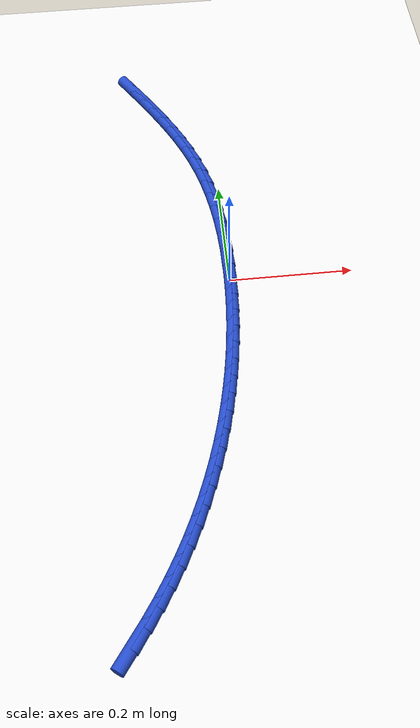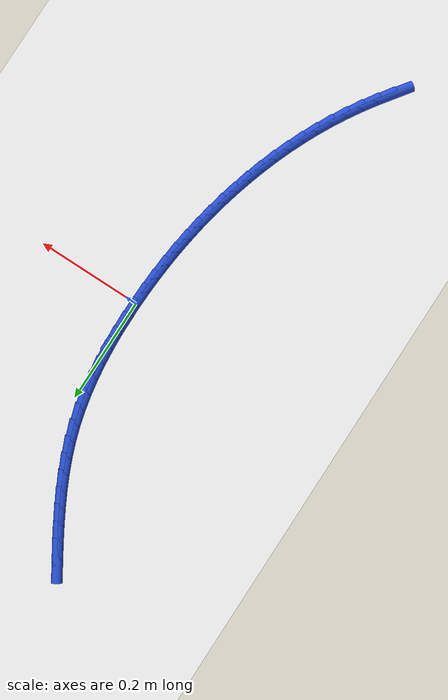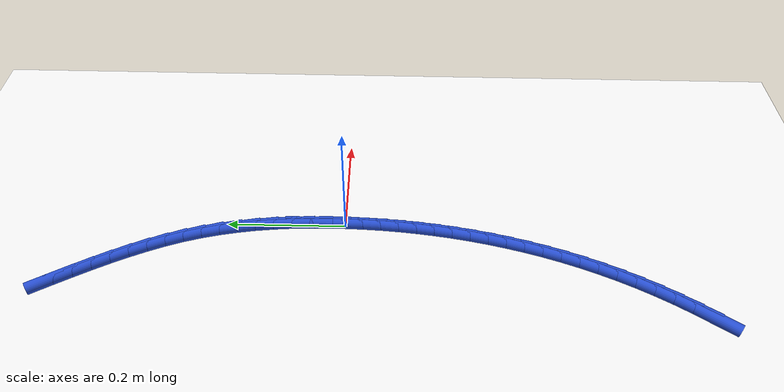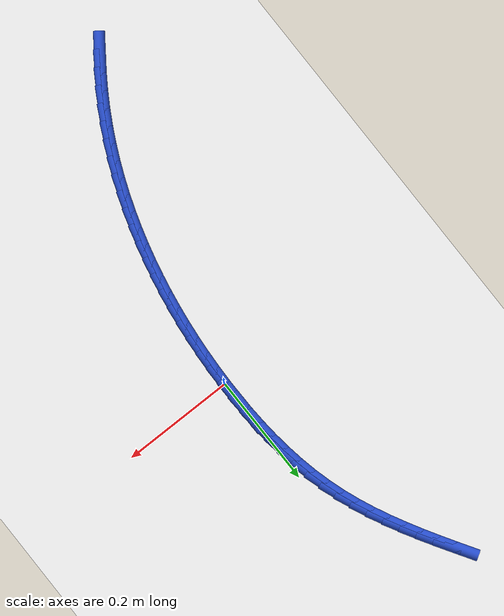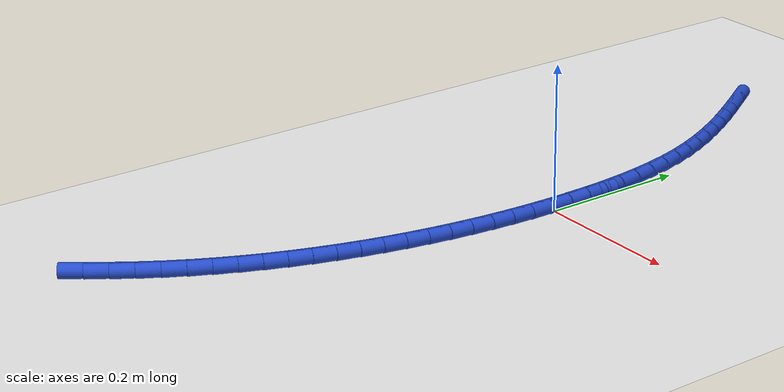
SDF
<sdf version="1.6">
 <world name="default">
  <model name="ground_plane">
   <static>1</static>
   <link name="link">
    <collision name="collision">
     <geometry><plane><normal>0 0 1</normal><size>100 100</size></plane></geometry>
     <surface><friction><ode><mu>100</mu><mu2>50</mu2></ode></friction></surface>
    </collision>
    <visual name="visual">
     <cast_shadows>0</cast_shadows>
     <geometry><plane><normal>0 0 1</normal><size>100 100</size></plane></geometry>
     <material>
      <script><uri>file://media/materials/scripts/gazebo.material</uri><name>Gazebo/WhiteGlow</name></script>
     </material>
    </visual>
   </link>
  </model>
  <model name="line">
   <link name="link_0">
    <pose>-7.37257477290143e-18 -6.938893903907228e-18 0.01 0 1.57 1.5674022319807317</pose>
    <collision name="collision">
     <geometry><cylinder><radius>0.01</radius><length>0.08</length></cylinder></geometry>
    </collision>
    <visual name="visual">
     <material>
      <script><name>Gazebo/Blue</name><uri>file://media/materials/scripts/gazebo.material</uri></script>
     </material>
     <geometry><cylinder><radius>0.01</radius><length>0.08</length></cylinder></geometry>
    </visual>
   </link>
   <link name="link_1">
    <pose>0.00010328172378574896 0.03042971185034169 0.01 0 1.57 -1.5463053639427928</pose>
    <collision name="collision">
     <geometry><cylinder><radius>0.01</radius><length>0.08</length></cylinder></geometry>
    </collision>
    <visual name="visual">
     <material>
      <script><name>Gazebo/Blue</name><uri>file://media/materials/scripts/gazebo.material</uri></script>
     </material>
     <geometry><cylinder><radius>0.01</radius><length>0.08</length></cylinder></geometry>
    </visual>
   </link>
   <link name="link_2">
    <pose>-0.0006423701465075508 0.060869624987475605 0.01 0 1.57 -1.515353460619935</pose>
    <collision name="collision">
     <geometry><cylinder><radius>0.01</radius><length>0.08</length></cylinder></geometry>
    </collision>
    <visual name="visual">
     <material>
      <script><name>Gazebo/Blue</name><uri>file://media/materials/scripts/gazebo.material</uri></script>
     </material>
     <geometry><cylinder><radius>0.01</radius><length>0.08</length></cylinder></geometry>
    </visual>
   </link>
   <link name="link_3">
    <pose>-0.0023283620806781656 0.09124799764926991 0.01 0 1.57 -1.481179829045575</pose>
    <collision name="collision">
     <geometry><cylinder><radius>0.01</radius><length>0.08</length></cylinder></geometry>
    </collision>
    <visual name="visual">
     <material>
      <script><name>Gazebo/Blue</name><uri>file://media/materials/scripts/gazebo.material</uri></script>
     </material>
     <geometry><cylinder><radius>0.01</radius><length>0.08</length></cylinder></geometry>
    </visual>
   </link>
   <link name="link_4">
    <pose>-0.005046100548524349 0.12149308807359267 0.01 0 1.57 -1.4436273597365452</pose>
    <collision name="collision">
     <geometry><cylinder><radius>0.01</radius><length>0.08</length></cylinder></geometry>
    </collision>
    <visual name="visual">
     <material>
      <script><name>Gazebo/Blue</name><uri>file://media/materials/scripts/gazebo.material</uri></script>
     </material>
     <geometry><cylinder><radius>0.01</radius><length>0.08</length></cylinder></geometry>
    </visual>
   </link>
   <link name="link_5">
    <pose>-0.008886992019844362 0.151533154498312 0.01 0 1.57 -1.402546920274872</pose>
    <collision name="collision">
     <geometry><cylinder><radius>0.01</radius><length>0.08</length></cylinder></geometry>
    </collision>
    <visual name="visual">
     <material>
      <script><name>Gazebo/Blue</name><uri>file://media/materials/scripts/gazebo.material</uri></script>
     </material>
     <geometry><cylinder><radius>0.01</radius><length>0.08</length></cylinder></geometry>
    </visual>
   </link>
   <link name="link_6">
    <pose>-0.01394244296443647 0.18129645516129603 0.01 0 1.57 -1.3578105071537598</pose>
    <collision name="collision">
     <geometry><cylinder><radius>0.01</radius><length>0.08</length></cylinder></geometry>
    </collision>
    <visual name="visual">
     <material>
      <script><name>Gazebo/Blue</name><uri>file://media/materials/scripts/gazebo.material</uri></script>
     </material>
     <geometry><cylinder><radius>0.01</radius><length>0.08</length></cylinder></geometry>
    </visual>
   </link>
   <link name="link_7">
    <pose>-0.020303859852098916 0.21071124830041288 0.01 0 1.57 -1.3093276165098042</pose>
    <collision name="collision">
     <geometry><cylinder><radius>0.01</radius><length>0.08</length></cylinder></geometry>
    </collision>
    <visual name="visual">
     <material>
      <script><name>Gazebo/Blue</name><uri>file://media/materials/scripts/gazebo.material</uri></script>
     </material>
     <geometry><cylinder><radius>0.01</radius><length>0.08</length></cylinder></geometry>
    </visual>
   </link>
   <link name="link_8">
    <pose>-0.028062649152629963 0.23970579215353066 0.01 0 1.57 -1.2571251343741232</pose>
    <collision name="collision">
     <geometry><cylinder><radius>0.01</radius><length>0.08</length></cylinder></geometry>
    </collision>
    <visual name="visual">
     <material>
      <script><name>Gazebo/Blue</name><uri>file://media/materials/scripts/gazebo.material</uri></script>
     </material>
     <geometry><cylinder><radius>0.01</radius><length>0.08</length></cylinder></geometry>
    </visual>
   </link>
   <link name="link_9">
    <pose>-0.037308552403289105 0.26820908481968486 0.01 0 1.57 -1.204940926215308</pose>
    <collision name="collision">
     <geometry><cylinder><radius>0.01</radius><length>0.08</length></cylinder></geometry>
    </collision>
    <visual name="visual">
     <material>
      <script><name>Gazebo/Blue</name><uri>file://media/materials/scripts/gazebo.material</uri></script>
     </material>
     <geometry><cylinder><radius>0.01</radius><length>0.08</length></cylinder></geometry>
    </visual>
   </link>
   <link name="link_10">
    <pose>-0.048030074452251305 0.29619511186330744 0.01 0 1.57 -1.1586576392292973</pose>
    <collision name="collision">
     <geometry><cylinder><radius>0.01</radius><length>0.08</length></cylinder></geometry>
    </collision>
    <visual name="visual">
     <material>
      <script><name>Gazebo/Blue</name><uri>file://media/materials/scripts/gazebo.material</uri></script>
     </material>
     <geometry><cylinder><radius>0.01</radius><length>0.08</length></cylinder></geometry>
    </visual>
   </link>
   <link name="link_11">
    <pose>-0.06005802746195553 0.32370793417731925 0.01 0 1.57 -1.1188317549096656</pose>
    <collision name="collision">
     <geometry><cylinder><radius>0.01</radius><length>0.08</length></cylinder></geometry>
    </collision>
    <visual name="visual">
     <material>
      <script><name>Gazebo/Blue</name><uri>file://media/materials/scripts/gazebo.material</uri></script>
     </material>
     <geometry><cylinder><radius>0.01</radius><length>0.08</length></cylinder></geometry>
    </visual>
   </link>
   <link name="link_12">
    <pose>-0.07320956755038621 0.35079768111492915 0.01 0 1.57 -1.0854157992072404</pose>
    <collision name="collision">
     <geometry><cylinder><radius>0.01</radius><length>0.08</length></cylinder></geometry>
    </collision>
    <visual name="visual">
     <material>
      <script><name>Gazebo/Blue</name><uri>file://media/materials/scripts/gazebo.material</uri></script>
     </material>
     <geometry><cylinder><radius>0.01</radius><length>0.08</length></cylinder></geometry>
    </visual>
   </link>
   <link name="link_13">
    <pose>-0.08730185083552774 0.3775144820293458 0.01 0 1.57 -1.0583042262396472</pose>
    <collision name="collision">
     <geometry><cylinder><radius>0.01</radius><length>0.08</length></cylinder></geometry>
    </collision>
    <visual name="visual">
     <material>
      <script><name>Gazebo/Blue</name><uri>file://media/materials/scripts/gazebo.material</uri></script>
     </material>
     <geometry><cylinder><radius>0.01</radius><length>0.08</length></cylinder></geometry>
    </visual>
   </link>
   <link name="link_14">
    <pose>-0.1021520334353646 0.40390846627377774 0.01 0 1.57 -1.0373740282187012</pose>
    <collision name="collision">
     <geometry><cylinder><radius>0.01</radius><length>0.08</length></cylinder></geometry>
    </collision>
    <visual name="visual">
     <material>
      <script><name>Gazebo/Blue</name><uri>file://media/materials/scripts/gazebo.material</uri></script>
     </material>
     <geometry><cylinder><radius>0.01</radius><length>0.08</length></cylinder></geometry>
    </visual>
   </link>
   <link name="link_15">
    <pose>-0.11757727146788118 0.4300297632014336 0.01 0 1.57 -1.0225156596896658</pose>
    <collision name="collision">
     <geometry><cylinder><radius>0.01</radius><length>0.08</length></cylinder></geometry>
    </collision>
    <visual name="visual">
     <material>
      <script><name>Gazebo/Blue</name><uri>file://media/materials/scripts/gazebo.material</uri></script>
     </material>
     <geometry><cylinder><radius>0.01</radius><length>0.08</length></cylinder></geometry>
    </visual>
   </link>
   <link name="link_16">
    <pose>-0.13339472105106187 0.45592850216552205 0.01 0 1.57 -1.0136553831200168</pose>
    <collision name="collision">
     <geometry><cylinder><radius>0.01</radius><length>0.08</length></cylinder></geometry>
    </collision>
    <visual name="visual">
     <material>
      <script><name>Gazebo/Blue</name><uri>file://media/materials/scripts/gazebo.material</uri></script>
     </material>
     <geometry><cylinder><radius>0.01</radius><length>0.08</length></cylinder></geometry>
    </visual>
   </link>
   <link name="link_220">
    <pose>-0.17961824253057918 -0.5676541765882707 0.01 0 1.57 0.9466374508213395</pose>
    <collision name="collision">
     <geometry><cylinder><radius>0.01</radius><length>0.08</length></cylinder></geometry>
    </collision>
    <visual name="visual">
     <material>
      <script><name>Gazebo/Blue</name><uri>file://media/materials/scripts/gazebo.material</uri></script>
     </material>
     <geometry><cylinder><radius>0.01</radius><length>0.08</length></cylinder></geometry>
    </visual>
   </link>
   <link name="link_221">
    <pose>-0.1616759695616989 -0.5427414895989944 0.01 0 1.57 0.9834541358317406</pose>
    <collision name="collision">
     <geometry><cylinder><radius>0.01</radius><length>0.08</length></cylinder></geometry>
    </collision>
    <visual name="visual">
     <material>
      <script><name>Gazebo/Blue</name><uri>file://media/materials/scripts/gazebo.material</uri></script>
     </material>
     <geometry><cylinder><radius>0.01</radius><length>0.08</length></cylinder></geometry>
    </visual>
   </link>
   <link name="link_222">
    <pose>-0.14468498251319764 -0.5172185044083495 0.01 0 1.57 1.02064122013154</pose>
    <collision name="collision">
     <geometry><cylinder><radius>0.01</radius><length>0.08</length></cylinder></geometry>
    </collision>
    <visual name="visual">
     <material>
      <script><name>Gazebo/Blue</name><uri>file://media/materials/scripts/gazebo.material</uri></script>
     </material>
     <geometry><cylinder><radius>0.01</radius><length>0.08</length></cylinder></geometry>
    </visual>
   </link>
   <link name="link_223">
    <pose>-0.12870566361890728 -0.49116464311343994 0.01 0 1.57 1.0578726293713185</pose>
    <collision name="collision">
     <geometry><cylinder><radius>0.01</radius><length>0.08</length></cylinder></geometry>
    </collision>
    <visual name="visual">
     <material>
      <script><name>Gazebo/Blue</name><uri>file://media/materials/scripts/gazebo.material</uri></script>
     </material>
     <geometry><cylinder><radius>0.01</radius><length>0.08</length></cylinder></geometry>
    </visual>
   </link>
   <link name="link_224">
    <pose>-0.11376746663546829 -0.46464101995878715 0.01 0 1.57 1.0943271268389725</pose>
    <collision name="collision">
     <geometry><cylinder><radius>0.01</radius><length>0.08</length></cylinder></geometry>
    </collision>
    <visual name="visual">
     <material>
      <script><name>Gazebo/Blue</name><uri>file://media/materials/scripts/gazebo.material</uri></script>
     </material>
     <geometry><cylinder><radius>0.01</radius><length>0.08</length></cylinder></geometry>
    </visual>
   </link>
   <link name="link_225">
    <pose>-0.09985237636459653 -0.4376806503393076 0.01 0 1.57 1.129886831129689</pose>
    <collision name="collision">
     <geometry><cylinder><radius>0.01</radius><length>0.08</length></cylinder></geometry>
    </collision>
    <visual name="visual">
     <material>
      <script><name>Gazebo/Blue</name><uri>file://media/materials/scripts/gazebo.material</uri></script>
     </material>
     <geometry><cylinder><radius>0.01</radius><length>0.08</length></cylinder></geometry>
    </visual>
   </link>
   <link name="link_226">
    <pose>-0.0869383487206974 -0.410314164783877 0.01 0 1.57 1.164516922000821</pose>
    <collision name="collision">
     <geometry><cylinder><radius>0.01</radius><length>0.08</length></cylinder></geometry>
    </collision>
    <visual name="visual">
     <material>
      <script><name>Gazebo/Blue</name><uri>file://media/materials/scripts/gazebo.material</uri></script>
     </material>
     <geometry><cylinder><radius>0.01</radius><length>0.08</length></cylinder></geometry>
    </visual>
   </link>
   <link name="link_227">
    <pose>-0.07500333961817632 -0.38257219382137164 0.01 0 1.57 1.1981934545440416</pose>
    <collision name="collision">
     <geometry><cylinder><radius>0.01</radius><length>0.08</length></cylinder></geometry>
    </collision>
    <visual name="visual">
     <material>
      <script><name>Gazebo/Blue</name><uri>file://media/materials/scripts/gazebo.material</uri></script>
     </material>
     <geometry><cylinder><radius>0.01</radius><length>0.08</length></cylinder></geometry>
    </visual>
   </link>
   <link name="link_228">
    <pose>-0.06402530497143863 -0.35448536798066704 0.01 0 1.57 1.2309025603217045</pose>
    <collision name="collision">
     <geometry><cylinder><radius>0.01</radius><length>0.08</length></cylinder></geometry>
    </collision>
    <visual name="visual">
     <material>
      <script><name>Gazebo/Blue</name><uri>file://media/materials/scripts/gazebo.material</uri></script>
     </material>
     <geometry><cylinder><radius>0.01</radius><length>0.08</length></cylinder></geometry>
    </visual>
   </link>
   <link name="link_229">
    <pose>-0.053982200694889744 -0.32608431779063907 0.01 0 1.57 1.2626395306838987</pose>
    <collision name="collision">
     <geometry><cylinder><radius>0.01</radius><length>0.08</length></cylinder></geometry>
    </collision>
    <visual name="visual">
     <material>
      <script><name>Gazebo/Blue</name><uri>file://media/materials/scripts/gazebo.material</uri></script>
     </material>
     <geometry><cylinder><radius>0.01</radius><length>0.08</length></cylinder></geometry>
    </visual>
   </link>
   <link name="link_230">
    <pose>-0.0448519827029348 -0.2973996737801631 0.01 0 1.57 1.293407835491477</pose>
    <collision name="collision">
     <geometry><cylinder><radius>0.01</radius><length>0.08</length></cylinder></geometry>
    </collision>
    <visual name="visual">
     <material>
      <script><name>Gazebo/Blue</name><uri>file://media/materials/scripts/gazebo.material</uri></script>
     </material>
     <geometry><cylinder><radius>0.01</radius><length>0.08</length></cylinder></geometry>
    </visual>
   </link>
   <link name="link_231">
    <pose>-0.03661260690997968 -0.2684620664781163 0.01 0 1.57 1.323240586374611</pose>
    <collision name="collision">
     <geometry><cylinder><radius>0.01</radius><length>0.08</length></cylinder></geometry>
    </collision>
    <visual name="visual">
     <material>
      <script><name>Gazebo/Blue</name><uri>file://media/materials/scripts/gazebo.material</uri></script>
     </material>
     <geometry><cylinder><radius>0.01</radius><length>0.08</length></cylinder></geometry>
    </visual>
   </link>
   <link name="link_232">
    <pose>-0.02924252970247476 -0.2393013493025951 0.01 0 1.57 1.3524050845372801</pose>
    <collision name="collision">
     <geometry><cylinder><radius>0.01</radius><length>0.08</length></cylinder></geometry>
    </collision>
    <visual name="visual">
     <material>
      <script><name>Gazebo/Blue</name><uri>file://media/materials/scripts/gazebo.material</uri></script>
     </material>
     <geometry><cylinder><radius>0.01</radius><length>0.08</length></cylinder></geometry>
    </visual>
   </link>
   <link name="link_233">
    <pose>-0.022725986649943103 -0.20993840201272357 0.01 0 1.57 1.3810573881205768</pose>
    <collision name="collision">
     <geometry><cylinder><radius>0.01</radius><length>0.08</length></cylinder></geometry>
    </collision>
    <visual name="visual">
     <material>
      <script><name>Gazebo/Blue</name><uri>file://media/materials/scripts/gazebo.material</uri></script>
     </material>
     <geometry><cylinder><radius>0.01</radius><length>0.08</length></cylinder></geometry>
    </visual>
   </link>
   <link name="link_234">
    <pose>-0.017050923483588054 -0.18038834339324064 0.01 0 1.57 1.4091889174664376</pose>
    <collision name="collision">
     <geometry><cylinder><radius>0.01</radius><length>0.08</length></cylinder></geometry>
    </collision>
    <visual name="visual">
     <material>
      <script><name>Gazebo/Blue</name><uri>file://media/materials/scripts/gazebo.material</uri></script>
     </material>
     <geometry><cylinder><radius>0.01</radius><length>0.08</length></cylinder></geometry>
    </visual>
   </link>
   <link name="link_235">
    <pose>-0.012205346951710218 -0.15066619748424442 0.01 0 1.57 1.4367920016676798</pose>
    <collision name="collision">
     <geometry><cylinder><radius>0.01</radius><length>0.08</length></cylinder></geometry>
    </collision>
    <visual name="visual">
     <material>
      <script><name>Gazebo/Blue</name><uri>file://media/materials/scripts/gazebo.material</uri></script>
     </material>
     <geometry><cylinder><radius>0.01</radius><length>0.08</length></cylinder></geometry>
    </visual>
   </link>
   <link name="link_236">
    <pose>-0.008177263802610182 -0.12078698832583312 0.01 0 1.57 1.463862386717885</pose>
    <collision name="collision">
     <geometry><cylinder><radius>0.01</radius><length>0.08</length></cylinder></geometry>
    </collision>
    <visual name="visual">
     <material>
      <script><name>Gazebo/Blue</name><uri>file://media/materials/scripts/gazebo.material</uri></script>
     </material>
     <geometry><cylinder><radius>0.01</radius><length>0.08</length></cylinder></geometry>
    </visual>
   </link>
   <link name="link_237">
    <pose>-0.0049546807845885455 -0.09076573995810486 0.01 0 1.57 1.4903989849653743</pose>
    <collision name="collision">
     <geometry><cylinder><radius>0.01</radius><length>0.08</length></cylinder></geometry>
    </collision>
    <visual name="visual">
     <material>
      <script><name>Gazebo/Blue</name><uri>file://media/materials/scripts/gazebo.material</uri></script>
     </material>
     <geometry><cylinder><radius>0.01</radius><length>0.08</length></cylinder></geometry>
    </visual>
   </link>
   <link name="link_238">
    <pose>-0.002525604645945852 -0.06061747642115713 0.01 0 1.57 1.5164036126441487</pose>
    <collision name="collision">
     <geometry><cylinder><radius>0.01</radius><length>0.08</length></cylinder></geometry>
    </collision>
    <visual name="visual">
     <material>
      <script><name>Gazebo/Blue</name><uri>file://media/materials/scripts/gazebo.material</uri></script>
     </material>
     <geometry><cylinder><radius>0.01</radius><length>0.08</length></cylinder></geometry>
    </visual>
   </link>
   <link name="link_239">
    <pose>-0.0008780421349828308 -0.03035722175508971 0.01 0 1.57 1.5418807226424522</pose>
    <collision name="collision">
     <geometry><cylinder><radius>0.01</radius><length>0.08</length></cylinder></geometry>
    </collision>
    <visual name="visual">
     <material>
      <script><name>Gazebo/Blue</name><uri>file://media/materials/scripts/gazebo.material</uri></script>
     </material>
     <geometry><cylinder><radius>0.01</radius><length>0.08</length></cylinder></geometry>
    </visual>
   </link>
   <link name="link_240">
    <pose>-4.7704895589362195e-18 4.85722573273506e-17 0.01 0 1.57 1.5668371386312423</pose>
    <collision name="collision">
     <geometry><cylinder><radius>0.01</radius><length>0.08</length></cylinder></geometry>
    </collision>
    <visual name="visual">
     <material>
      <script><name>Gazebo/Blue</name><uri>file://media/materials/scripts/gazebo.material</uri></script>
     </material>
     <geometry><cylinder><radius>0.01</radius><length>0.08</length></cylinder></geometry>
    </visual>
   </link>
   <link name="link_241">
    <pose>0.0001205150107020281 0.03043916480401393 0.01 0 1.57 -1.5503108579742522</pose>
    <collision name="collision">
     <geometry><cylinder><radius>0.01</radius><length>0.08</length></cylinder></geometry>
    </collision>
    <visual name="visual">
     <material>
      <script><name>Gazebo/Blue</name><uri>file://media/materials/scripts/gazebo.material</uri></script>
     </material>
     <geometry><cylinder><radius>0.01</radius><length>0.08</length></cylinder></geometry>
    </visual>
   </link>
   <link name="link_242">
    <pose>-0.0005045038511773316 0.06094524861685374 0.01 0 1.57 -1.5625185309144</pose>
    <collision name="collision">
     <geometry><cylinder><radius>0.01</radius><length>0.08</length></cylinder></geometry>
    </collision>
    <visual name="visual">
     <material>
      <script><name>Gazebo/Blue</name><uri>file://media/materials/scripts/gazebo.material</uri></script>
     </material>
     <geometry><cylinder><radius>0.01</radius><length>0.08</length></cylinder></geometry>
    </visual>
   </link>
  </model>
 </world>
</sdf>
